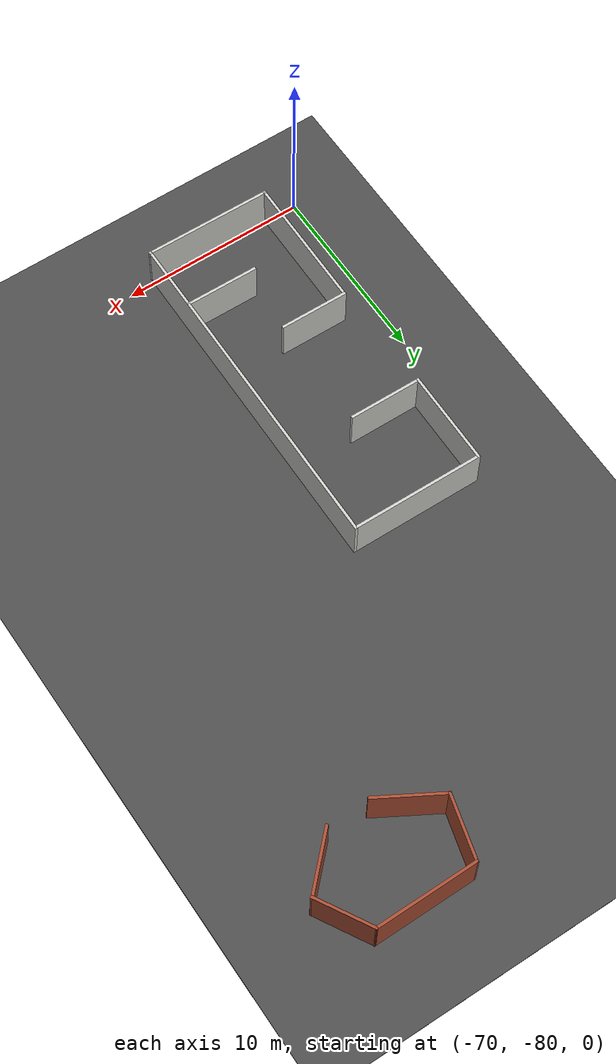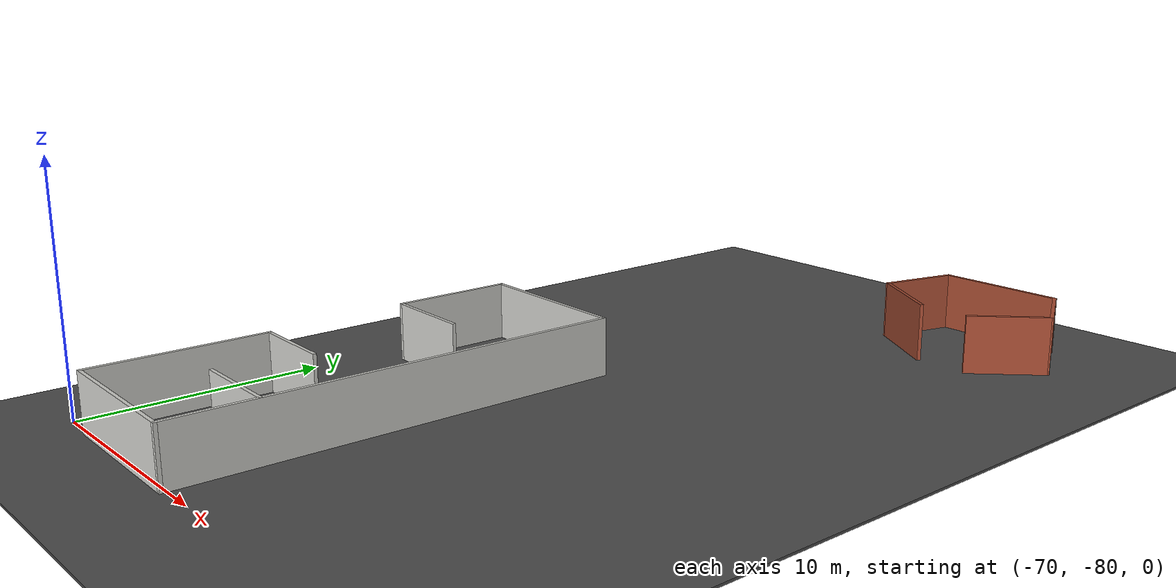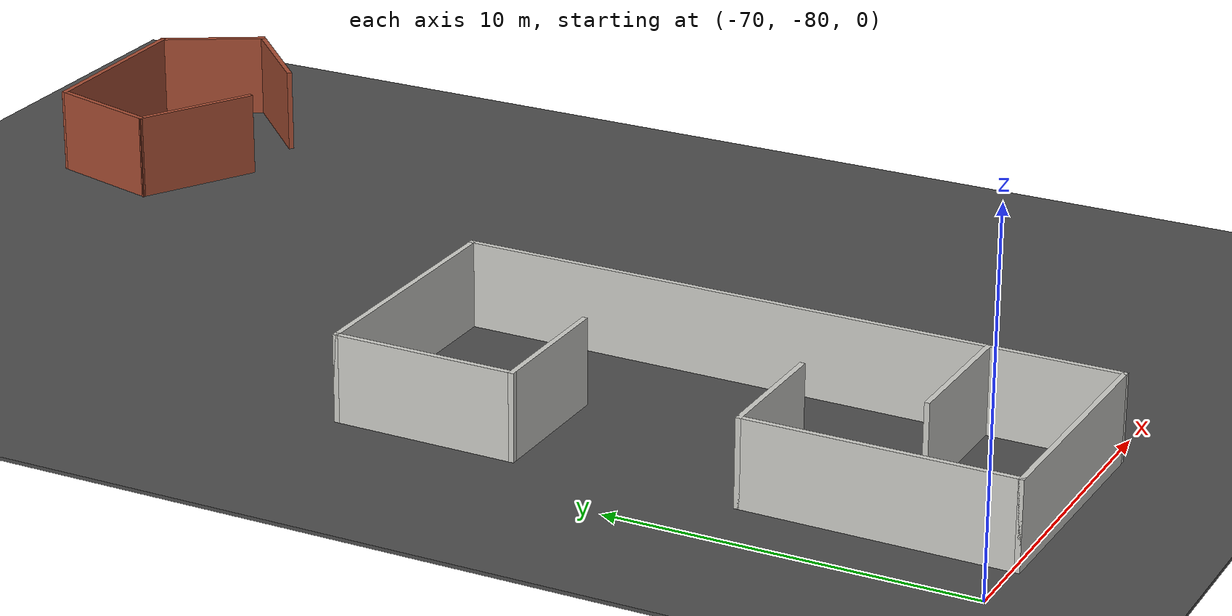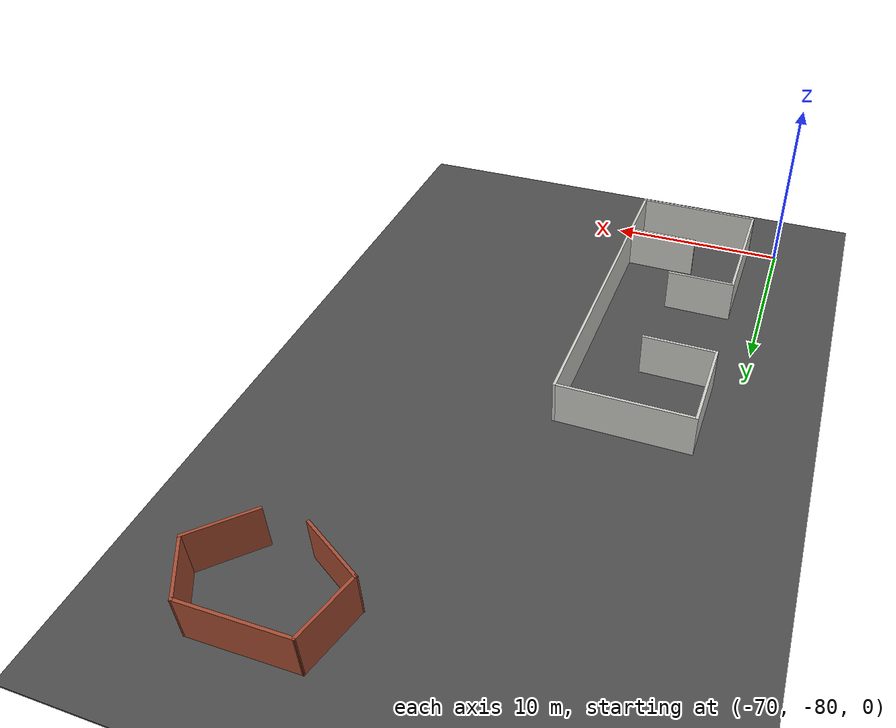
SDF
<sdf version="1.6">
 <world name="default">
  <model name="ground_plane">
   <static>1</static>
   <link name="link">
    <collision name="collision">
     <geometry><plane><normal>0 0 1</normal><size>250 250</size></plane></geometry>
     <surface><friction><ode><mu>100</mu><mu2>50</mu2></ode></friction></surface>
    </collision>
    <visual name="visual">
     <cast_shadows>0</cast_shadows>
     <geometry><plane><normal>0 0 1</normal><size>250 250</size></plane></geometry>
     <material>
      <script><uri>file://media/materials/scripts/gazebo.material</uri><name>Gazebo/Grey</name></script>
     </material>
    </visual>
   </link>
  </model>
  <model name="concrete_room2_0">
   <pose>-64.8929 -70.9047 0 0 -0 1.56011</pose>
   <link name="Wall_61">
    <collision name="Wall_61_Collision">
     <geometry><box><size>5.25 0.15 2.5</size></box></geometry>
     <pose>0 0 1.25 0 -0 0</pose>
    </collision>
    <visual name="Wall_61_Visual">
     <pose>0 0 1.25 0 -0 0</pose>
     <geometry><box><size>5.25 0.15 2.5</size></box></geometry>
     <material>
      <script><uri>file://media/materials/scripts/gazebo.material</uri><name>Gazebo/CeilingTiled</name></script>
      <ambient>1 1 1 1</ambient>
     </material>
     <meta><layer>0</layer></meta>
    </visual>
    <pose>6.75 3.55 0 0 -0 0</pose>
   </link>
   <link name="Wall_62">
    <collision name="Wall_62_Collision">
     <geometry><box><size>7.25 0.15 2.5</size></box></geometry>
     <pose>0 0 1.25 0 -0 0</pose>
    </collision>
    <visual name="Wall_62_Visual">
     <pose>0 0 1.25 0 -0 0</pose>
     <geometry><box><size>7.25 0.15 2.5</size></box></geometry>
     <material>
      <script><uri>file://media/materials/scripts/gazebo.material</uri><name>Gazebo/CeilingTiled</name></script>
      <ambient>1 1 1 1</ambient>
     </material>
     <meta><layer>0</layer></meta>
    </visual>
    <pose>9.3 0 0 0 0 -1.5708</pose>
   </link>
   <link name="Wall_63">
    <collision name="Wall_63_Collision">
     <geometry><box><size>18.75 0.15 2.5</size></box></geometry>
     <pose>0 0 1.25 0 -0 0</pose>
    </collision>
    <visual name="Wall_63_Visual">
     <pose>0 0 1.25 0 -0 0</pose>
     <geometry><box><size>18.75 0.15 2.5</size></box></geometry>
     <material>
      <script><uri>file://media/materials/scripts/gazebo.material</uri><name>Gazebo/CeilingTiled</name></script>
      <ambient>1 1 1 1</ambient>
     </material>
     <meta><layer>0</layer></meta>
    </visual>
    <pose>0 -3.55 0 0 -0 3.14159</pose>
   </link>
   <link name="Wall_64">
    <collision name="Wall_64_Collision">
     <geometry><box><size>7 0.15 2.5</size></box></geometry>
     <pose>0 0 1.25 0 -0 0</pose>
    </collision>
    <visual name="Wall_64_Visual">
     <pose>0 0 1.25 0 -0 0</pose>
     <geometry><box><size>7 0.15 2.5</size></box></geometry>
     <material>
      <script><uri>file://media/materials/scripts/gazebo.material</uri><name>Gazebo/CeilingTiled</name></script>
      <ambient>1 1 1 1</ambient>
     </material>
     <meta><layer>0</layer></meta>
    </visual>
    <pose>-9.3 -0.125 0 0 -0 1.5708</pose>
   </link>
   <link name="Wall_65">
    <collision name="Wall_65_Collision">
     <geometry><box><size>7.5 0.15 2.5</size></box></geometry>
     <pose>0 0 1.25 0 -0 0</pose>
    </collision>
    <visual name="Wall_65_Visual">
     <pose>0 0 1.25 0 -0 0</pose>
     <geometry><box><size>7.5 0.15 2.5</size></box></geometry>
     <material>
      <script><uri>file://media/materials/scripts/gazebo.material</uri><name>Gazebo/CeilingTiled</name></script>
      <ambient>1 1 1 1</ambient>
     </material>
     <meta><layer>0</layer></meta>
    </visual>
    <pose>-5.625 3.3 0 0 -0 0</pose>
   </link>
   <link name="Wall_66">
    <collision name="Wall_66_Collision">
     <geometry><box><size>3.75 0.15 2.5</size></box></geometry>
     <pose>0 0 1.25 0 -0 0</pose>
    </collision>
    <visual name="Wall_66_Visual">
     <pose>0 0 1.25 0 -0 0</pose>
     <geometry><box><size>3.75 0.15 2.5</size></box></geometry>
     <material>
      <script><uri>file://media/materials/scripts/gazebo.material</uri><name>Gazebo/CeilingTiled</name></script>
      <ambient>1 1 1 1</ambient>
     </material>
     <meta><layer>0</layer></meta>
    </visual>
    <pose>-1.95 1.5 0 0 0 -1.5708</pose>
   </link>
   <link name="Wall_70">
    <collision name="Wall_70_Collision">
     <geometry><box><size>4 0.15 2.5</size></box></geometry>
     <pose>0 0 1.25 0 -0 0</pose>
    </collision>
    <visual name="Wall_70_Visual">
     <pose>0 0 1.25 0 -0 0</pose>
     <geometry><box><size>4 0.15 2.5</size></box></geometry>
     <material>
      <script><uri>file://media/materials/scripts/gazebo.material</uri><name>Gazebo/CeilingTiled</name></script>
      <ambient>1 1 1 1</ambient>
     </material>
     <meta><layer>0</layer></meta>
    </visual>
    <pose>4.2 1.625 0 0 0 -1.5708</pose>
   </link>
   <link name="Wall_72">
    <collision name="Wall_72_Collision">
     <geometry><box><size>4 0.15 2.5</size></box></geometry>
     <pose>0 0 1.25 0 -0 0</pose>
    </collision>
    <visual name="Wall_72_Visual">
     <pose>0 0 1.25 0 -0 0</pose>
     <geometry><box><size>4 0.15 2.5</size></box></geometry>
     <material>
      <script><uri>file://media/materials/scripts/gazebo.material</uri><name>Gazebo/CeilingTiled</name></script>
      <ambient>1 1 1 1</ambient>
     </material>
     <meta><layer>0</layer></meta>
    </visual>
    <pose>-5.65005 -1.59593 0 0 -0 1.5708</pose>
   </link>
   <static>1</static>
  </model>
  <model name="asphalt_plane">
   <static>1</static>
   <link name="link">
    <collision name="collision"><geometry><box><size>250 250 0.1</size></box></geometry></collision>
    <visual name="visual">
     <cast_shadows>0</cast_shadows>
     <geometry><box><size>250 250 0.1</size></box></geometry>
     <material>
      <script>
       <uri>model://asphalt_plane/materials/scripts</uri>
       <uri>model://asphalt_plane/materials/textures</uri>
       <name>vrc/asphalt</name>
      </script>
     </material>
    </visual>
   </link>
   <pose>15.141 -2.59476 0 0 -0 0</pose>
  </model>
  <model name="brick_room1_clone_clone_2">
   <pose>-53.3266 -47.6284 0 0 -0 0</pose>
   <link name="Wall_11">
    <collision name="Wall_11_Collision">
     <geometry><box><size>3.25 0.15 2.5</size></box></geometry>
     <pose>0 0 1.25 0 -0 0</pose>
    </collision>
    <visual name="Wall_11_Visual">
     <pose>0 0 1.25 0 -0 0</pose>
     <geometry><box><size>3.25 0.15 2.5</size></box></geometry>
     <material>
      <script><uri>file://media/materials/scripts/gazebo.material</uri><name>Gazebo/Bricks</name></script>
      <ambient>1 1 1 1</ambient>
     </material>
    </visual>
    <pose>3.12132 1.19483 0 0 0 -1.0472</pose>
   </link>
   <link name="Wall_12">
    <collision name="Wall_12_Collision">
     <geometry><box><size>3.5 0.15 2.5</size></box></geometry>
     <pose>0 0 1.25 0 -0 0</pose>
    </collision>
    <visual name="Wall_12_Visual">
     <pose>0 0 1.25 0 -0 0</pose>
     <geometry><box><size>3.5 0.15 2.5</size></box></geometry>
     <material>
      <script><uri>file://media/materials/scripts/gazebo.material</uri><name>Gazebo/Bricks</name></script>
      <ambient>1 1 1 1</ambient>
     </material>
    </visual>
    <pose>2.71192 -1.33192 0 0 0 -2.35619</pose>
   </link>
   <link name="Wall_7">
    <collision name="Wall_7_Collision">
     <geometry><box><size>5.52935 0.15 2.5</size></box></geometry>
     <pose>0 0 1.25 0 -0 0</pose>
    </collision>
    <visual name="Wall_7_Visual">
     <pose>0 0 1.25 0 -0 0</pose>
     <geometry><box><size>5.52935 0.15 2.5</size></box></geometry>
     <material>
      <script><uri>file://media/materials/scripts/gazebo.material</uri><name>Gazebo/Bricks</name></script>
      <ambient>1 1 1 1</ambient>
     </material>
    </visual>
    <pose>-0.343285 2.51793 0 0 0 -3.13444</pose>
   </link>
   <link name="Wall_8">
    <collision name="Wall_8_Collision">
     <geometry><box><size>3.5 0.15 2.5</size></box></geometry>
     <pose>0 0 1.25 0 -0 0</pose>
    </collision>
    <visual name="Wall_8_Visual">
     <pose>0 0 1.25 0 -0 0</pose>
     <geometry><box><size>3.5 0.15 2.5</size></box></geometry>
     <material>
      <script><uri>file://media/materials/scripts/gazebo.material</uri><name>Gazebo/Bricks</name></script>
      <ambient>1 1 1 1</ambient>
     </material>
    </visual>
    <pose>-3.46641 0.880761 0 0 0 -1.8326</pose>
   </link>
   <link name="Wall_9">
    <collision name="Wall_9_Collision">
     <geometry><box><size>3.75 0.15 2.5</size></box></geometry>
     <pose>0 0 1.25 0 -0 0</pose>
    </collision>
    <visual name="Wall_9_Visual">
     <pose>0 0 1.25 0 -0 0</pose>
     <geometry><box><size>3.75 0.15 2.5</size></box></geometry>
     <material>
      <script><uri>file://media/materials/scripts/gazebo.material</uri><name>Gazebo/Bricks</name></script>
      <ambient>1 1 1 1</ambient>
     </material>
    </visual>
    <pose>-2.34109 -1.63716 0 0 0 -0.523599</pose>
   </link>
   <static>1</static>
  </model>
 </world>
</sdf>
